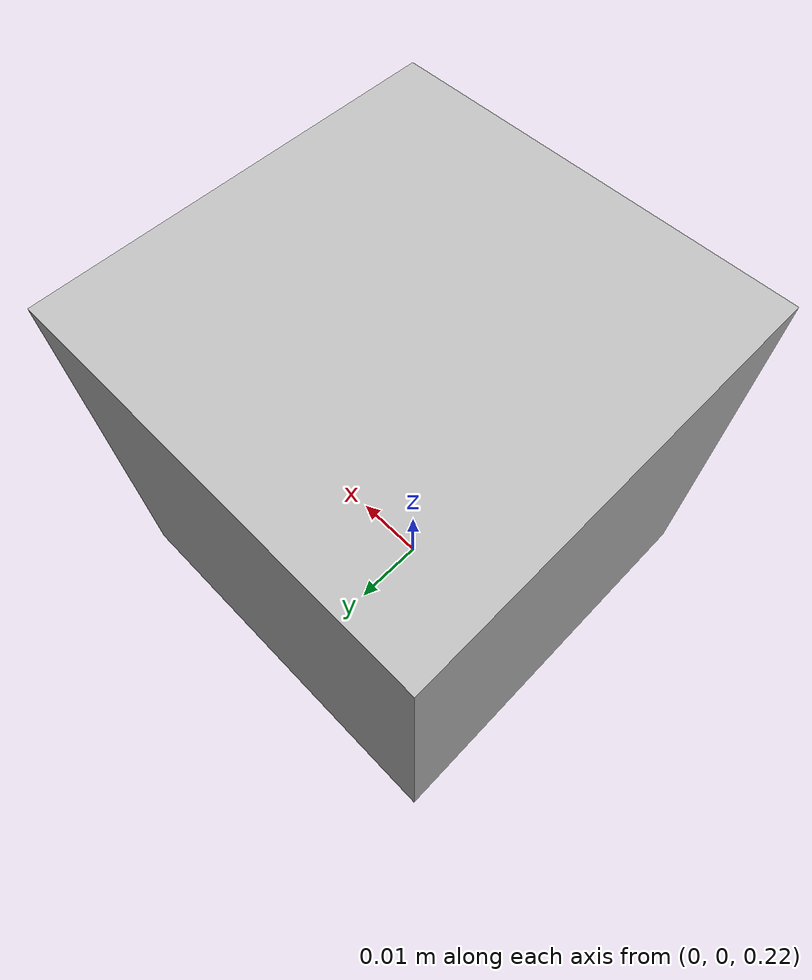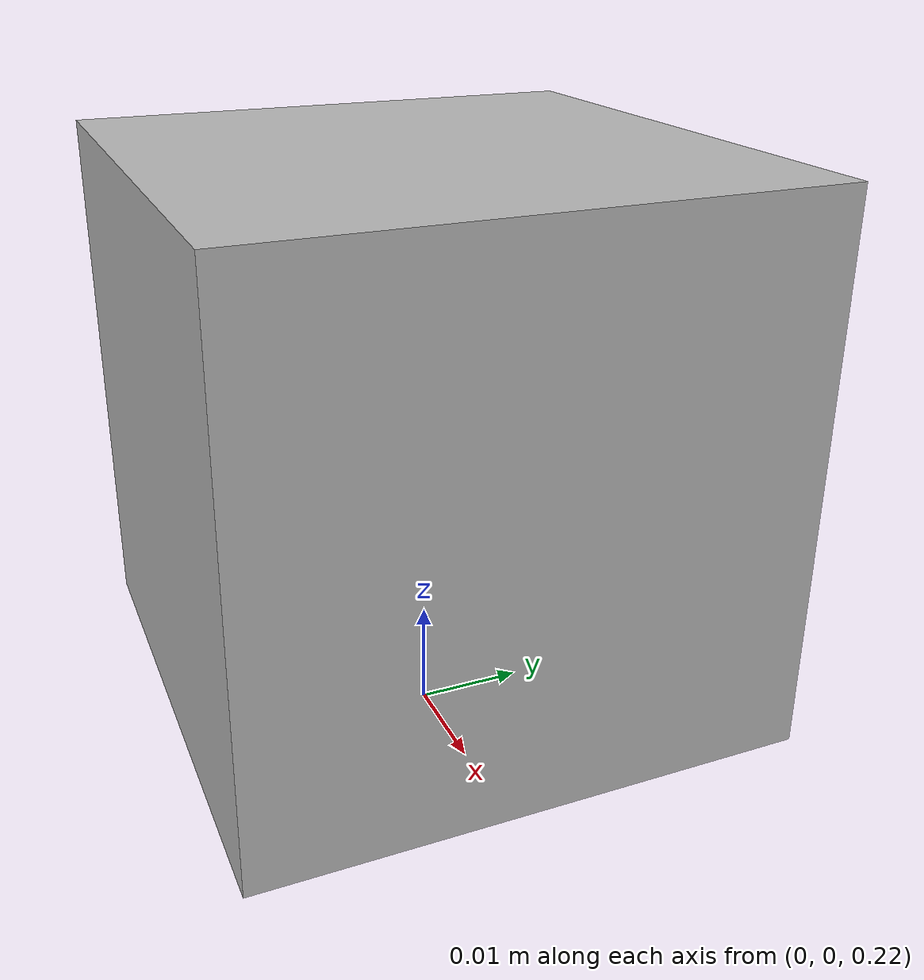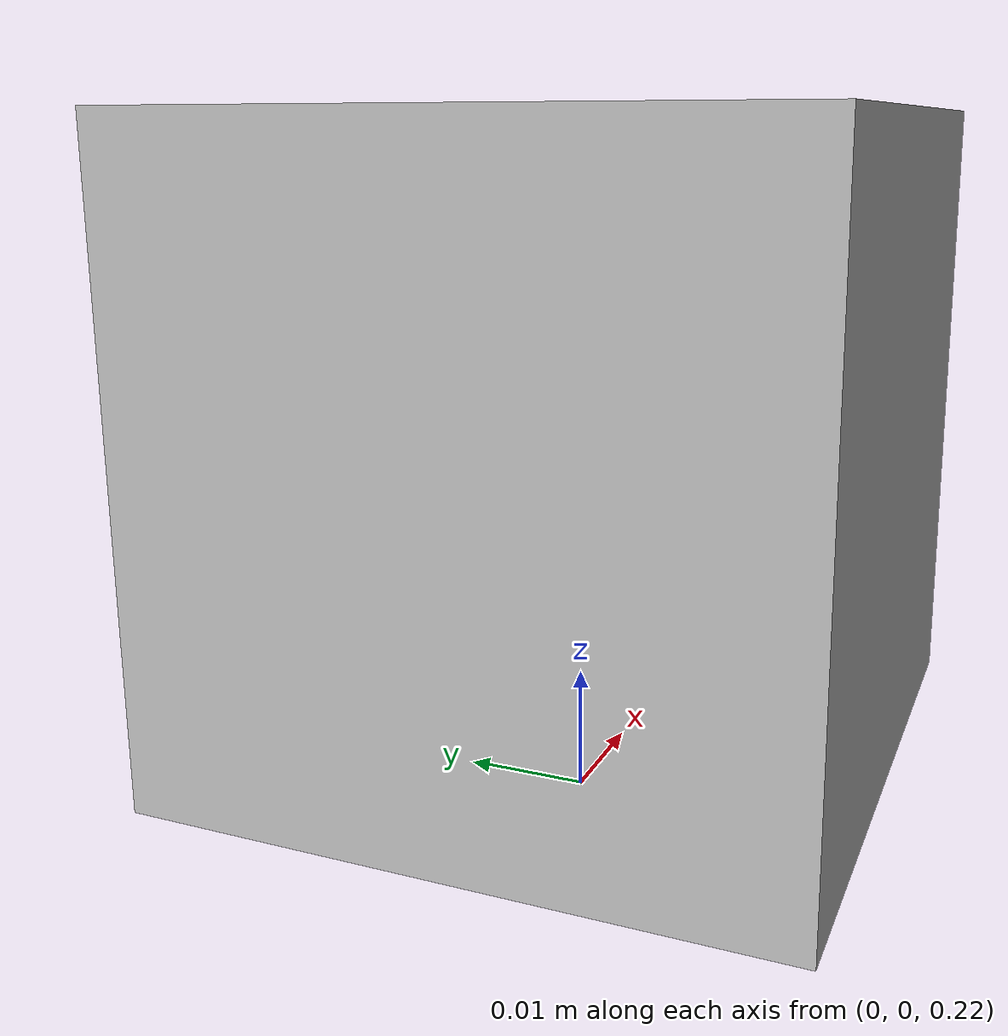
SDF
<?xml version="1.0" ?>
<sdf version="1.6">
  <!-- Модель виртуальной камеры с RGB-сенсором mono_camera -->
  <model name="mono_camera_model">
    <pose>0 0 0.25 0 0 0</pose>
    <static>true</static>
    <link name="camera_link">
      <collision name="collision">
        <geometry>
          <box><size>0.05 0.05 0.05</size></box>
        </geometry>
      </collision>

      <visual name="visual">
        <geometry>
          <box><size>0.05 0.05 0.05</size></box>
        </geometry>
      </visual>

      <sensor name="mono_camera" type="camera">
        <camera name="mono_camera">
          <horizontal_fov>0.5</horizontal_fov>
          <image>
            <width>3840</width>
            <height>2400</height>
            <format>R8G8B8</format>
          </image>
          <clip>
            <near>0.05</near>
            <far>1000.0</far>
          </clip>
          <noise>
            <type>gaussian</type>
            <mean>0.0</mean>
            <stddev>0.005</stddev>
          </noise>
        </camera>

        <plugin name="mono_camera_plugin" filename="libgazebo_ros_camera.so">
          <cameraName>mono_camera</cameraName>
          <ros>
            <namespace>/mono_camera</namespace>
            <argument>image_raw:=image_raw</argument>
            <argument>camera_info:=camera_info</argument>
          </ros>
          <frame_name>camera_optical_frame</frame_name>
          <optical_frame_id>camera_optical_frame</optical_frame_id>
          <update_rate>5</update_rate>
        </plugin>
      </sensor>
    </link>
  </model>
</sdf>
